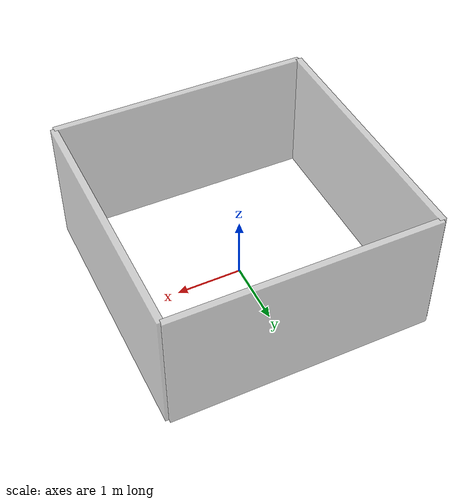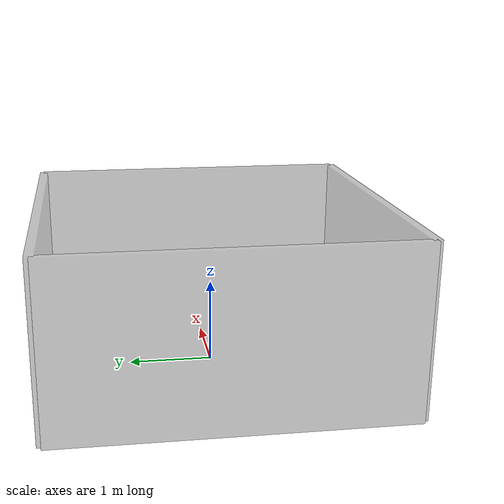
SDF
<?xml version="1.0"?>
<sdf version="1.8">
  <world name="default">
    <physics name="default_physics" default="true" type="ode">
      <max_step_size>0.001</max_step_size>
      <real_time_factor>1.0</real_time_factor>
      <real_time_update_rate>1000</real_time_update_rate>
    </physics>

    <scene>
      <ambient>0.4 0.4 0.4 1</ambient>
      <background>0.7 0.7 0.7 1</background>
      <shadows>true</shadows>
    </scene>

    <light name="sun" type="directional">
      <cast_shadows>true</cast_shadows>
      <pose>0 0 10 0 0 0</pose>
      <diffuse>0.8 0.8 0.8 1</diffuse>
      <specular>0.2 0.2 0.2 1</specular>
      <attenuation>
        <range>1000</range>
        <constant>0.9</constant>
        <linear>0.01</linear>
        <quadratic>0.001</quadratic>
      </attenuation>
      <direction>-0.5 0.1 -0.9</direction>
    </light>

    <model name="ground_plane">
      <static>true</static>
      <link name="link">
        <collision name="collision">
          <geometry>
            <plane>
              <normal>0 0 1</normal>
              <size>100 100</size>
            </plane>
          </geometry>
          <surface>
            <friction>
              <ode>
                <mu>1.0</mu>
                <mu2>1.0</mu2>
                <fdir1>0 0 0</fdir1>
                <slip1>0</slip1>
                <slip2>0</slip2>
              </ode>
            </friction>
          </surface>
        </collision>
      </link>
    </model>

    <model name="test_room">
      <static>true</static>
      <link name="walls">
        <visual name="north_visual">
          <pose>0 2 1 0 0 0</pose>
          <transparency>0.35</transparency>
          <geometry>
            <box><size>4 0.1 2</size></box>
          </geometry>
        </visual>
        <collision name="north_collision">
          <pose>0 2 1 0 0 0</pose>
          <geometry>
            <box><size>4 0.1 2</size></box>
          </geometry>
        </collision>

        <visual name="south_visual">
          <pose>0 -2 1 0 0 0</pose>
          <transparency>0.35</transparency>
          <geometry>
            <box><size>4 0.1 2</size></box>
          </geometry>
        </visual>
        <collision name="south_collision">
          <pose>0 -2 1 0 0 0</pose>
          <geometry>
            <box><size>4 0.1 2</size></box>
          </geometry>
        </collision>

        <visual name="east_visual">
          <pose>2 0 1 0 0 0</pose>
          <transparency>0.35</transparency>
          <geometry>
            <box><size>0.1 4 2</size></box>
          </geometry>
        </visual>
        <collision name="east_collision">
          <pose>2 0 1 0 0 0</pose>
          <geometry>
            <box><size>0.1 4 2</size></box>
          </geometry>
        </collision>

        <visual name="west_visual">
          <pose>-2 0 1 0 0 0</pose>
          <transparency>0.35</transparency>
          <geometry>
            <box><size>0.1 4 2</size></box>
          </geometry>
        </visual>
        <collision name="west_collision">
          <pose>-2 0 1 0 0 0</pose>
          <geometry>
            <box><size>0.1 4 2</size></box>
          </geometry>
        </collision>
      </link>
    </model>

    <plugin filename="gz-sim-physics-system" name="gz::sim::systems::Physics">
    </plugin>

    <plugin filename="gz-sim-user-commands-system" name="gz::sim::systems::UserCommands">
    </plugin>

    <plugin filename="gz-sim-scene-broadcaster-system" name="gz::sim::systems::SceneBroadcaster">
    </plugin>
    <plugin filename="gz-sim-sensors-system" name="gz::sim::systems::Sensors">
      <render_engine>ogre2</render_engine>
    </plugin>
  </world>
</sdf>
